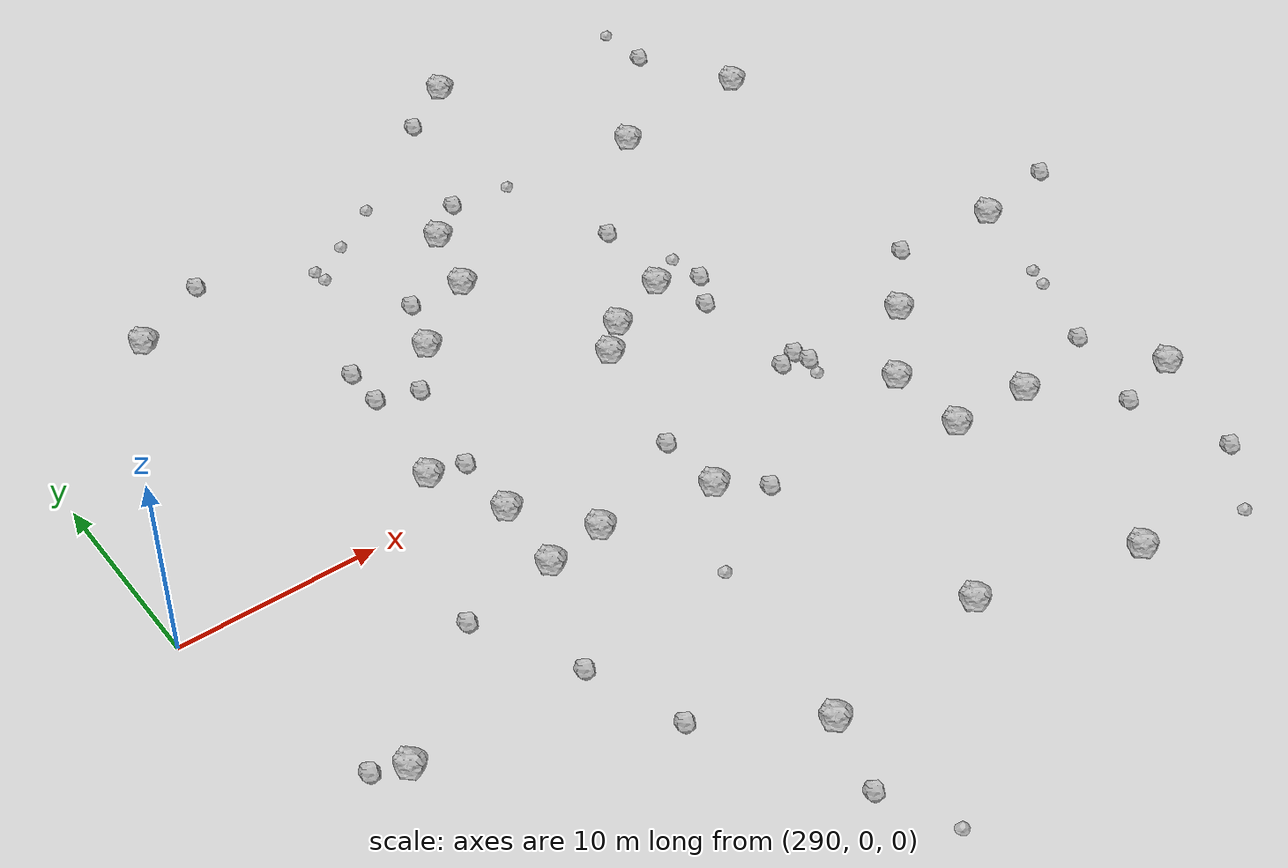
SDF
<sdf version="1.6">
 <world name="default">
  <include><uri>model://sun</uri></include>
  <model name="rock1_8_2">
   <include><uri>model://rock1</uri><pose>309.067523939073 9.790732313620246 0.5 0 0 0</pose></include>
  </model>
  <model name="rock1_8_3">
   <include><uri>model://rock1</uri><pose>310.43464302389754 -20.02761859723595 0.5 0 0 0</pose></include>
  </model>
  <model name="rock1_8_4">
   <include><uri>model://rock1</uri><pose>316.02898991315584 4.1297928231818375 0.5 0 0 0</pose></include>
  </model>
  <model name="rock1_8_5">
   <include><uri>model://rock1</uri><pose>320.90072508483604 27.130192839622836 0.5 0 0 0</pose></include>
  </model>
  <model name="rock1_8_6">
   <include><uri>model://rock1</uri><pose>314.65583149442966 -6.036358188704053 0.5 0 0 0</pose></include>
  </model>
  <model name="rock1_8_7">
   <include><uri>model://rock1</uri><pose>326.14687594620773 -5.452767449608942 0.5 0 0 0</pose></include>
  </model>
  <model name="rock1_8_8">
   <include><uri>model://rock1</uri><pose>308.86112491611755 -5.167999293078189 0.5 0 0 0</pose></include>
  </model>
  <model name="rock1_8_9">
   <include><uri>model://rock1</uri><pose>326.60935836859085 17.353950022868766 0.5 0 0 0</pose></include>
  </model>
  <model name="rock1_8_10">
   <include><uri>model://rock1</uri><pose>319.63505946971634 -18.444967160736994 0.5 0 0 0</pose></include>
  </model>
  <model name="rock1_8_11">
   <include><uri>model://rock1</uri><pose>312.99172426314055 12.691105796368078 0.5 0 0 0</pose></include>
  </model>
  <model name="rock1_8_12">
   <include><uri>model://rock1</uri><pose>338.04214899029404 1.3100069420196263 0.5 0 0 0</pose></include>
  </model>
  <model name="rock1_8_13">
   <include><uri>model://rock1</uri><pose>329.4754155726753 -1.6823654240325894 0.5 0 0 0</pose></include>
  </model>
  <model name="rock1_8_14">
   <include><uri>model://rock1</uri><pose>330.5372865199434 -9.715083578878293 0.5 0 0 0</pose></include>
  </model>
  <model name="rock1_8_15">
   <include><uri>model://rock1</uri><pose>327.840025059074 -20.482110611098676 0.5 0 0 0</pose></include>
  </model>
  <model name="rock1_8_16">
   <include><uri>model://rock1</uri><pose>314.00482166970727 16.51803542801428 0.5 0 0 0</pose></include>
  </model>
  <model name="rock1_8_17">
   <include><uri>model://rock1</uri><pose>305.8102187457113 -5.663095167019726 0.5 0 0 0</pose></include>
  </model>
  <model name="rock1_8_18">
   <include><uri>model://rock1</uri><pose>326.3707290677544 -9.584545806357074 0.5 0 0 0</pose></include>
  </model>
  <model name="rock1_8_19">
   <include><uri>model://rock1</uri><pose>320.88653728324715 6.965105631284828 0.5 0 0 0</pose></include>
  </model>
  <model name="rock1_8_20">
   <include><uri>model://rock1</uri><pose>306.08134206590796 -1.6989514981304197 0.5 0 0 0</pose></include>
  </model>
  <model name="rock1_8_21">
   <include><uri>model://rock1</uri><pose>334.3640371166343 18.30082203446856 0.5 0 0 0</pose></include>
  </model>
  <model name="rock1_8_22">
   <include><uri>model://rock1</uri><pose>304.3547180151255 2.225962535787758 0.5 0 0 0</pose></include>
  </model>
  <model name="rock1_8_23">
   <include><uri>model://rock1</uri><pose>297.9995850920248 18.155985763177036 0.5 0 0 0</pose></include>
  </model>
  <model name="rock1_8_24">
   <include><uri>model://rock1</uri><pose>294.6681775243191 -11.621998375754153 0.5 0 0 0</pose></include>
  </model>
  <model name="rock1_8_25">
   <include><uri>model://rock1</uri><pose>317.5398367388267 5.607234608023539 0.5 0 0 0</pose></include>
  </model>
  <model name="rock1_8_26">
   <include><uri>model://rock1</uri><pose>337.4418347760176 -12.357661885126326 0.5 0 0 0</pose></include>
  </model>
  <model name="rock2_8_0">
   <include><uri>model://rock2</uri><pose>321.16355346316107 11.703567004330573 0.3 0 0 0</pose></include>
  </model>
  <model name="rock2_8_1">
   <include><uri>model://rock2</uri><pose>322.223160569428 -1.3804932724409795 0.3 0 0 0</pose></include>
  </model>
  <model name="rock2_8_2">
   <include><uri>model://rock2</uri><pose>323.24324319106944 -1.0578160090633446 0.3 0 0 0</pose></include>
  </model>
  <model name="rock2_8_3">
   <include><uri>model://rock2</uri><pose>332.45928662104905 1.784092794405975 0.3 0 0 0</pose></include>
  </model>
  <model name="rock2_8_4">
   <include><uri>model://rock2</uri><pose>309.2641250761164 -23.86075208305502 0.3 0 0 0</pose></include>
  </model>
  <model name="rock2_8_5">
   <include><uri>model://rock2</uri><pose>322.93654986986843 6.194978557869028 0.3 0 0 0</pose></include>
  </model>
  <model name="rock2_8_6">
   <include><uri>model://rock2</uri><pose>321.94485301240064 4.388202345570967 0.3 0 0 0</pose></include>
  </model>
  <model name="rock2_8_7">
   <include><uri>model://rock2</uri><pose>293.0874003993402 -10.860044381251836 0.3 0 0 0</pose></include>
  </model>
  <model name="rock2_8_8">
   <include><uri>model://rock2</uri><pose>306.1318150732834 1.9471877866144425 0.3 0 0 0</pose></include>
  </model>
  <model name="rock2_8_9">
   <include><uri>model://rock2</uri><pose>305.15617431492865 -16.412337293875332 0.3 0 0 0</pose></include>
  </model>
  <model name="rock2_8_10">
   <include><uri>model://rock2</uri><pose>300.8375742131999 -6.339947294619794 0.3 0 0 0</pose></include>
  </model>
  <model name="rock2_8_11">
   <include><uri>model://rock2</uri><pose>316.6886017185149 -7.522394726367242 0.3 0 0 0</pose></include>
  </model>
  <model name="rock2_8_12">
   <include><uri>model://rock2</uri><pose>315.9688454951355 18.335848869501092 0.3 0 0 0</pose></include>
  </model>
  <model name="rock2_8_13">
   <include><uri>model://rock2</uri><pose>317.8836923163484 25.23805700451996 0.3 0 0 0</pose></include>
  </model>
  <model name="rock2_8_14">
   <include><uri>model://rock2</uri><pose>331.46979591099307 23.19659685611571 0.3 0 0 0</pose></include>
  </model>
  <model name="rock2_8_15">
   <include><uri>model://rock2</uri><pose>310.020390431995 12.90517221510811 0.3 0 0 0</pose></include>
  </model>
  <model name="rock2_8_16">
   <include><uri>model://rock2</uri><pose>314.48511242471585 -2.4696861506268775 0.3 0 0 0</pose></include>
  </model>
  <model name="rock2_8_17">
   <include><uri>model://rock2</uri><pose>335.7486443421154 -18.132162782913436 0.3 0 0 0</pose></include>
  </model>
  <model name="rock2_8_18">
   <include><uri>model://rock2</uri><pose>334.0588145674578 -13.136704487740584 0.3 0 0 0</pose></include>
  </model>
  <model name="rock2_8_19">
   <include><uri>model://rock2</uri><pose>307.081834745651 7.413192663271545 0.3 0 0 0</pose></include>
  </model>
  <model name="rock2_8_20">
   <include><uri>model://rock2</uri><pose>305.0077540037483 10.326334141022379 0.3 0 0 0</pose></include>
  </model>
  <model name="rock2_8_21">
   <include><uri>model://rock2</uri><pose>335.1842093971925 -8.415128064704788 0.3 0 0 0</pose></include>
  </model>
  <model name="rock2_8_22">
   <include><uri>model://rock2</uri><pose>304.99849530571737 8.101980929340215 0.3 0 0 0</pose></include>
  </model>
  <model name="rock2_8_23">
   <include><uri>model://rock2</uri><pose>323.52404422611033 -1.8445136737832257 0.3 0 0 0</pose></include>
  </model>
  <model name="rock2_8_24">
   <include><uri>model://rock2</uri><pose>342.579226614705 2.374171228169878 0.3 0 0 0</pose></include>
  </model>
  <model name="rock2_8_25">
   <include><uri>model://rock2</uri><pose>303.44070033908736 -11.534522240565973 0.3 0 0 0</pose></include>
  </model>
  <model name="rock2_8_26">
   <include><uri>model://rock2</uri><pose>302.042551488376 20.45132280220551 0.3 0 0 0</pose></include>
  </model>
  <model name="rock3_8_0">
   <include><uri>model://rock3</uri><pose>319.14423011774863 17.987342962537774 0.2 0 0 0</pose></include>
  </model>
  <model name="rock3_8_1">
   <include><uri>model://rock3</uri><pose>307.4784981002255 17.960304822794257 0.2 0 0 0</pose></include>
  </model>
  <model name="rock3_8_2">
   <include><uri>model://rock3</uri><pose>307.58607908429616 17.151266754162847 0.2 0 0 0</pose></include>
  </model>
  <model name="rock3_8_3">
   <include><uri>model://rock3</uri><pose>322.6587013043713 8.084673407210033 0.2 0 0 0</pose></include>
  </model>
  <model name="rock3_8_4">
   <include><uri>model://rock3</uri><pose>311.7496817013188 -10.591312955647496 0.2 0 0 0</pose></include>
  </model>
  <model name="rock3_8_5">
   <include><uri>model://rock3</uri><pose>312.1448980840746 20.65615079126983 0.2 0 0 0</pose></include>
  </model>
  <model name="rock3_8_6">
   <include><uri>model://rock3</uri><pose>309.54694987823655 18.89183091402736 0.2 0 0 0</pose></include>
  </model>
  <model name="rock3_8_7">
   <include><uri>model://rock3</uri><pose>336.8683212261306 -3.3625367928182186 0.2 0 0 0</pose></include>
  </model>
  <model name="rock3_8_8">
   <include><uri>model://rock3</uri><pose>331.26804088686845 26.035973402950404 0.2 0 0 0</pose></include>
  </model>
  <model name="rock3_8_9">
   <include><uri>model://rock3</uri><pose>333.25664700944054 -21.525401506913138 0.2 0 0 0</pose></include>
  </model>
  <model name="rock3_8_10">
   <include><uri>model://rock3</uri><pose>336.5794450436674 -4.42371219120156 0.2 0 0 0</pose></include>
  </model>
  <model name="rock3_8_11">
   <include><uri>model://rock3</uri><pose>310.95959854348274 -27.419330222436965 0.2 0 0 0</pose></include>
  </model>
  <model name="rock3_8_12">
   <include><uri>model://rock3</uri><pose>323.27821776139467 -2.8318766723090683 0.2 0 0 0</pose></include>
  </model>
 </world>
</sdf>
